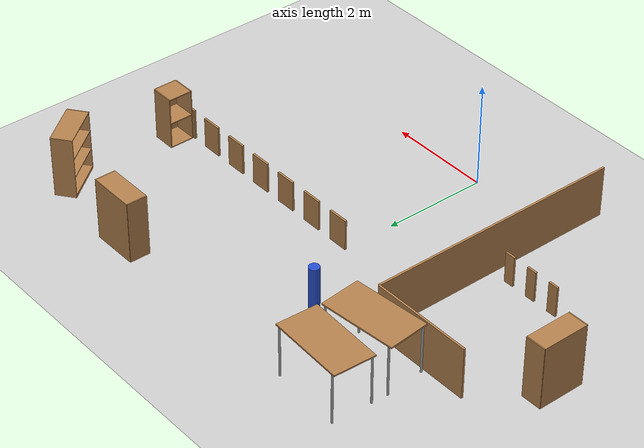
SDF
<sdf version="1.4">
 <world name="default">
  <model name="ground_plane">
   <static>1</static>
   <link name="link">
    <collision name="collision">
     <geometry><plane><normal>0 0 1</normal><size>50 50</size></plane></geometry>
     <surface><friction><ode><mu>100</mu><mu2>50</mu2></ode></friction></surface>
    </collision>
    <visual name="visual">
     <cast_shadows>0</cast_shadows>
     <geometry><plane><normal>0 0 1</normal><size>100 100</size></plane></geometry>
     <material>
      <script><uri>file://media/materials/scripts/gazebo.material</uri><name>Gazebo/Grey</name></script>
     </material>
    </visual>
    <velocity_decay><linear>0</linear><angular>0</angular></velocity_decay>
   </link>
  </model>
  <model name="target_cylinder_C">
   <pose>-1 4.5 0.5 0 -0 0</pose>
   <link name="link">
    <inertial>
     <mass>1</mass>
     <inertia><ixx>1</ixx><ixy>0</ixy><ixz>0</ixz><iyy>1</iyy><iyz>0</iyz><izz>1</izz></inertia>
    </inertial>
    <collision name="collision">
     <geometry><cylinder><radius>0.1</radius><length>1</length></cylinder></geometry>
    </collision>
    <visual name="visual">
     <geometry><cylinder><radius>0.1</radius><length>1</length></cylinder></geometry>
     <material>
      <script><uri>file://media/materials/scripts/gazebo.material</uri><name>Gazebo/Blue</name></script>
     </material>
    </visual>
    <velocity_decay><linear>0</linear><angular>0</angular></velocity_decay>
   </link>
   <static>1</static>
  </model>
  <model name="high_wall_3">
   <pose>-2 1.5 0.5 0 -0 1.571</pose>
   <link name="link">
    <inertial>
     <mass>1</mass>
     <inertia><ixx>1</ixx><ixy>0</ixy><ixz>0</ixz><iyy>1</iyy><iyz>0</iyz><izz>1</izz></inertia>
    </inertial>
    <collision name="collision"><geometry><box><size>5 0.04 1</size></box></geometry></collision>
    <visual name="visual">
     <geometry><box><size>5 0.04 1</size></box></geometry>
     <material>
      <script><uri>file://media/materials/scripts/gazebo.material</uri><name>Gazebo/Wood</name></script>
     </material>
    </visual>
    <velocity_decay><linear>0</linear><angular>0</angular></velocity_decay>
   </link>
   <static>1</static>
  </model>
  <model name="high_wall_4">
   <pose>-3 4 0.5 0 -0 0</pose>
   <link name="link">
    <inertial>
     <mass>1</mass>
     <inertia><ixx>1</ixx><ixy>0</ixy><ixz>0</ixz><iyy>1</iyy><iyz>0</iyz><izz>1</izz></inertia>
    </inertial>
    <collision name="collision"><geometry><box><size>2 0.04 1</size></box></geometry></collision>
    <visual name="visual">
     <geometry><box><size>2 0.04 1</size></box></geometry>
     <material>
      <script><uri>file://media/materials/scripts/gazebo.material</uri><name>Gazebo/Wood</name></script>
     </material>
    </visual>
    <velocity_decay><linear>0</linear><angular>0</angular></velocity_decay>
   </link>
   <static>1</static>
  </model>
  <model name="pillar_wall_1">
   <pose>0.2 3 0.3 0 -0 0</pose>
   <link name="link">
    <inertial>
     <mass>1</mass>
     <inertia><ixx>1</ixx><ixy>0</ixy><ixz>0</ixz><iyy>1</iyy><iyz>0</iyz><izz>1</izz></inertia>
    </inertial>
    <collision name="collision"><geometry><box><size>0.4 0.04 0.6</size></box></geometry></collision>
    <visual name="visual">
     <geometry><box><size>0.4 0.04 0.6</size></box></geometry>
     <material>
      <script><uri>file://media/materials/scripts/gazebo.material</uri><name>Gazebo/Wood</name></script>
     </material>
    </visual>
    <velocity_decay><linear>0</linear><angular>0</angular></velocity_decay>
   </link>
   <static>1</static>
  </model>
  <model name="pillar_wall_2">
   <pose>0.9 3 0.3 0 -0 0</pose>
   <link name="link">
    <inertial>
     <mass>1</mass>
     <inertia><ixx>1</ixx><ixy>0</ixy><ixz>0</ixz><iyy>1</iyy><iyz>0</iyz><izz>1</izz></inertia>
    </inertial>
    <collision name="collision"><geometry><box><size>0.4 0.04 0.6</size></box></geometry></collision>
    <visual name="visual">
     <geometry><box><size>0.4 0.04 0.6</size></box></geometry>
     <material>
      <script><uri>file://media/materials/scripts/gazebo.material</uri><name>Gazebo/Wood</name></script>
     </material>
    </visual>
    <velocity_decay><linear>0</linear><angular>0</angular></velocity_decay>
   </link>
   <static>1</static>
  </model>
  <model name="pillar_wall_3">
   <pose>1.6 3 0.3 0 -0 0</pose>
   <link name="link">
    <inertial>
     <mass>1</mass>
     <inertia><ixx>1</ixx><ixy>0</ixy><ixz>0</ixz><iyy>1</iyy><iyz>0</iyz><izz>1</izz></inertia>
    </inertial>
    <collision name="collision"><geometry><box><size>0.4 0.04 0.6</size></box></geometry></collision>
    <visual name="visual">
     <geometry><box><size>0.4 0.04 0.6</size></box></geometry>
     <material>
      <script><uri>file://media/materials/scripts/gazebo.material</uri><name>Gazebo/Wood</name></script>
     </material>
    </visual>
    <velocity_decay><linear>0</linear><angular>0</angular></velocity_decay>
   </link>
   <static>1</static>
  </model>
  <model name="pillar_wall_4">
   <pose>2.3 3 0.3 0 -0 0</pose>
   <link name="link">
    <inertial>
     <mass>1</mass>
     <inertia><ixx>1</ixx><ixy>0</ixy><ixz>0</ixz><iyy>1</iyy><iyz>0</iyz><izz>1</izz></inertia>
    </inertial>
    <collision name="collision"><geometry><box><size>0.4 0.04 0.6</size></box></geometry></collision>
    <visual name="visual">
     <geometry><box><size>0.4 0.04 0.6</size></box></geometry>
     <material>
      <script><uri>file://media/materials/scripts/gazebo.material</uri><name>Gazebo/Wood</name></script>
     </material>
    </visual>
    <velocity_decay><linear>0</linear><angular>0</angular></velocity_decay>
   </link>
   <static>1</static>
  </model>
  <model name="pillar_wall_5">
   <pose>3 3 0.3 0 -0 0</pose>
   <link name="link">
    <inertial>
     <mass>1</mass>
     <inertia><ixx>1</ixx><ixy>0</ixy><ixz>0</ixz><iyy>1</iyy><iyz>0</iyz><izz>1</izz></inertia>
    </inertial>
    <collision name="collision"><geometry><box><size>0.4 0.04 0.6</size></box></geometry></collision>
    <visual name="visual">
     <geometry><box><size>0.4 0.04 0.6</size></box></geometry>
     <material>
      <script><uri>file://media/materials/scripts/gazebo.material</uri><name>Gazebo/Wood</name></script>
     </material>
    </visual>
    <velocity_decay><linear>0</linear><angular>0</angular></velocity_decay>
   </link>
   <static>1</static>
  </model>
  <model name="pillar_wall_6">
   <pose>3.7 3 0.3 0 -0 0</pose>
   <link name="link">
    <inertial>
     <mass>1</mass>
     <inertia><ixx>1</ixx><ixy>0</ixy><ixz>0</ixz><iyy>1</iyy><iyz>0</iyz><izz>1</izz></inertia>
    </inertial>
    <collision name="collision"><geometry><box><size>0.4 0.04 0.6</size></box></geometry></collision>
    <visual name="visual">
     <geometry><box><size>0.4 0.04 0.6</size></box></geometry>
     <material>
      <script><uri>file://media/materials/scripts/gazebo.material</uri><name>Gazebo/Wood</name></script>
     </material>
    </visual>
    <velocity_decay><linear>0</linear><angular>0</angular></velocity_decay>
   </link>
   <static>1</static>
  </model>
  <model name="pillar_wall_7">
   <pose>4.5 3 0.3 0 -0 0</pose>
   <link name="link">
    <inertial>
     <mass>1</mass>
     <inertia><ixx>1</ixx><ixy>0</ixy><ixz>0</ixz><iyy>1</iyy><iyz>0</iyz><izz>1</izz></inertia>
    </inertial>
    <collision name="collision"><geometry><box><size>0.6 0.04 0.6</size></box></geometry></collision>
    <visual name="visual">
     <geometry><box><size>0.6 0.04 0.6</size></box></geometry>
     <material>
      <script><uri>file://media/materials/scripts/gazebo.material</uri><name>Gazebo/Wood</name></script>
     </material>
    </visual>
    <velocity_decay><linear>0</linear><angular>0</angular></velocity_decay>
   </link>
   <static>1</static>
  </model>
  <model name="pillar_wall_8">
   <pose>-3.4 1.5 0.3 0 -0 0</pose>
   <link name="link">
    <inertial>
     <mass>1</mass>
     <inertia><ixx>1</ixx><ixy>0</ixy><ixz>0</ixz><iyy>1</iyy><iyz>0</iyz><izz>1</izz></inertia>
    </inertial>
    <collision name="collision"><geometry><box><size>0.2 0.04 0.6</size></box></geometry></collision>
    <visual name="visual">
     <geometry><box><size>0.2 0.04 0.6</size></box></geometry>
     <material>
      <script><uri>file://media/materials/scripts/gazebo.material</uri><name>Gazebo/Wood</name></script>
     </material>
    </visual>
    <velocity_decay><linear>0</linear><angular>0</angular></velocity_decay>
   </link>
   <static>1</static>
  </model>
  <model name="pillar_wall_9">
   <pose>-2.9 1.5 0.3 0 -0 0</pose>
   <link name="link">
    <inertial>
     <mass>1</mass>
     <inertia><ixx>1</ixx><ixy>0</ixy><ixz>0</ixz><iyy>1</iyy><iyz>0</iyz><izz>1</izz></inertia>
    </inertial>
    <collision name="collision"><geometry><box><size>0.2 0.04 0.6</size></box></geometry></collision>
    <visual name="visual">
     <geometry><box><size>0.2 0.04 0.6</size></box></geometry>
     <material>
      <script><uri>file://media/materials/scripts/gazebo.material</uri><name>Gazebo/Wood</name></script>
     </material>
    </visual>
    <velocity_decay><linear>0</linear><angular>0</angular></velocity_decay>
   </link>
   <static>1</static>
  </model>
  <model name="pillar_wall_10">
   <pose>-2.4 1.5 0.3 0 -0 0</pose>
   <link name="link">
    <inertial>
     <mass>1</mass>
     <inertia><ixx>1</ixx><ixy>0</ixy><ixz>0</ixz><iyy>1</iyy><iyz>0</iyz><izz>1</izz></inertia>
    </inertial>
    <collision name="collision"><geometry><box><size>0.2 0.04 0.6</size></box></geometry></collision>
    <visual name="visual">
     <geometry><box><size>0.2 0.04 0.6</size></box></geometry>
     <material>
      <script><uri>file://media/materials/scripts/gazebo.material</uri><name>Gazebo/Wood</name></script>
     </material>
    </visual>
    <velocity_decay><linear>0</linear><angular>0</angular></velocity_decay>
   </link>
   <static>1</static>
  </model>
  <model name="table_1">
   <pose>-2.5 5.5 0 0 0 -0.05</pose>
   <static>1</static>
   <link name="link">
    <collision name="surface">
     <pose>0 0 1 0 -0 0</pose>
     <geometry><box><size>1.5 0.8 0.03</size></box></geometry>
     <surface><friction><ode><mu>0.6</mu><mu2>0.6</mu2></ode></friction></surface>
    </collision>
    <visual name="visual1">
     <pose>0 0 1 0 -0 0</pose>
     <geometry><box><size>1.5 0.8 0.03</size></box></geometry>
     <material>
      <script><uri>file://media/materials/scripts/gazebo.material</uri><name>Gazebo/Wood</name></script>
     </material>
    </visual>
    <collision name="front_left_leg">
     <pose>0.68 0.38 0.5 0 -0 0</pose>
     <geometry><cylinder><radius>0.02</radius><length>1</length></cylinder></geometry>
    </collision>
    <visual name="front_left_leg">
     <pose>0.68 0.38 0.5 0 -0 0</pose>
     <geometry><cylinder><radius>0.02</radius><length>1</length></cylinder></geometry>
     <material>
      <script><uri>file://media/materials/scripts/gazebo.material</uri><name>Gazebo/Grey</name></script>
     </material>
    </visual>
    <collision name="front_right_leg">
     <pose>0.68 -0.38 0.5 0 -0 0</pose>
     <geometry><cylinder><radius>0.02</radius><length>1</length></cylinder></geometry>
    </collision>
    <visual name="front_right_leg">
     <pose>0.68 -0.38 0.5 0 -0 0</pose>
     <geometry><cylinder><radius>0.02</radius><length>1</length></cylinder></geometry>
     <material>
      <script><uri>file://media/materials/scripts/gazebo.material</uri><name>Gazebo/Grey</name></script>
     </material>
    </visual>
    <collision name="back_right_leg">
     <pose>-0.68 -0.38 0.5 0 -0 0</pose>
     <geometry><cylinder><radius>0.02</radius><length>1</length></cylinder></geometry>
    </collision>
    <visual name="back_right_leg">
     <pose>-0.68 -0.38 0.5 0 -0 0</pose>
     <geometry><cylinder><radius>0.02</radius><length>1</length></cylinder></geometry>
     <material>
      <script><uri>file://media/materials/scripts/gazebo.material</uri><name>Gazebo/Grey</name></script>
     </material>
    </visual>
    <collision name="back_left_leg">
     <pose>-0.68 0.38 0.5 0 -0 0</pose>
     <geometry><cylinder><radius>0.02</radius><length>1</length></cylinder></geometry>
    </collision>
    <visual name="back_left_leg">
     <pose>-0.68 0.38 0.5 0 -0 0</pose>
     <geometry><cylinder><radius>0.02</radius><length>1</length></cylinder></geometry>
     <material>
      <script><uri>file://media/materials/scripts/gazebo.material</uri><name>Gazebo/Grey</name></script>
     </material>
    </visual>
    <velocity_decay><linear>0</linear><angular>0</angular></velocity_decay>
   </link>
  </model>
  <model name="table_2">
   <pose>-2.5 4.53 0 0 -0 0.1</pose>
   <static>1</static>
   <link name="link">
    <collision name="surface">
     <pose>0 0 1 0 -0 0</pose>
     <geometry><box><size>1.5 0.8 0.03</size></box></geometry>
     <surface><friction><ode><mu>0.6</mu><mu2>0.6</mu2></ode></friction></surface>
    </collision>
    <visual name="visual1">
     <pose>0 0 1 0 -0 0</pose>
     <geometry><box><size>1.5 0.8 0.03</size></box></geometry>
     <material>
      <script><uri>file://media/materials/scripts/gazebo.material</uri><name>Gazebo/Wood</name></script>
     </material>
    </visual>
    <collision name="front_left_leg">
     <pose>0.68 0.38 0.5 0 -0 0</pose>
     <geometry><cylinder><radius>0.02</radius><length>1</length></cylinder></geometry>
    </collision>
    <visual name="front_left_leg">
     <pose>0.68 0.38 0.5 0 -0 0</pose>
     <geometry><cylinder><radius>0.02</radius><length>1</length></cylinder></geometry>
     <material>
      <script><uri>file://media/materials/scripts/gazebo.material</uri><name>Gazebo/Grey</name></script>
     </material>
    </visual>
    <collision name="front_right_leg">
     <pose>0.68 -0.38 0.5 0 -0 0</pose>
     <geometry><cylinder><radius>0.02</radius><length>1</length></cylinder></geometry>
    </collision>
    <visual name="front_right_leg">
     <pose>0.68 -0.38 0.5 0 -0 0</pose>
     <geometry><cylinder><radius>0.02</radius><length>1</length></cylinder></geometry>
     <material>
      <script><uri>file://media/materials/scripts/gazebo.material</uri><name>Gazebo/Grey</name></script>
     </material>
    </visual>
    <collision name="back_right_leg">
     <pose>-0.68 -0.38 0.5 0 -0 0</pose>
     <geometry><cylinder><radius>0.02</radius><length>1</length></cylinder></geometry>
    </collision>
    <visual name="back_right_leg">
     <pose>-0.68 -0.38 0.5 0 -0 0</pose>
     <geometry><cylinder><radius>0.02</radius><length>1</length></cylinder></geometry>
     <material>
      <script><uri>file://media/materials/scripts/gazebo.material</uri><name>Gazebo/Grey</name></script>
     </material>
    </visual>
    <collision name="back_left_leg">
     <pose>-0.68 0.38 0.5 0 -0 0</pose>
     <geometry><cylinder><radius>0.02</radius><length>1</length></cylinder></geometry>
    </collision>
    <visual name="back_left_leg">
     <pose>-0.68 0.38 0.5 0 -0 0</pose>
     <geometry><cylinder><radius>0.02</radius><length>1</length></cylinder></geometry>
     <material>
      <script><uri>file://media/materials/scripts/gazebo.material</uri><name>Gazebo/Grey</name></script>
     </material>
    </visual>
    <velocity_decay><linear>0</linear><angular>0</angular></velocity_decay>
   </link>
  </model>
  <model name="bookshelf_1">
   <static>1</static>
   <link name="link">
    <inertial><mass>1</mass></inertial>
    <collision name="back">
     <pose>0 0.005 0.6 0 -0 0</pose>
     <geometry><box><size>0.9 0.01 1.2</size></box></geometry>
    </collision>
    <visual name="visual1">
     <pose>0 0.005 0.6 0 -0 0</pose>
     <geometry><box><size>0.9 0.01 1.2</size></box></geometry>
     <material>
      <script><uri>file://media/materials/scripts/gazebo.material</uri><name>Gazebo/Wood</name></script>
     </material>
    </visual>
    <collision name="left_side">
     <pose>0.45 -0.195 0.6 0 -0 0</pose>
     <geometry><box><size>0.02 0.4 1.2</size></box></geometry>
    </collision>
    <visual name="visual2">
     <pose>0.45 -0.195 0.6 0 -0 0</pose>
     <geometry><box><size>0.02 0.4 1.2</size></box></geometry>
     <material>
      <script><uri>file://media/materials/scripts/gazebo.material</uri><name>Gazebo/Wood</name></script>
     </material>
    </visual>
    <collision name="right_side">
     <pose>-0.45 -0.195 0.6 0 -0 0</pose>
     <geometry><box><size>0.02 0.4 1.2</size></box></geometry>
    </collision>
    <visual name="visual3">
     <pose>-0.45 -0.195 0.6 0 -0 0</pose>
     <geometry><box><size>0.02 0.4 1.2</size></box></geometry>
     <material>
      <script><uri>file://media/materials/scripts/gazebo.material</uri><name>Gazebo/Wood</name></script>
     </material>
    </visual>
    <collision name="bottom">
     <pose>0 -0.195 0.03 0 -0 0</pose>
     <geometry><box><size>0.88 0.4 0.06</size></box></geometry>
    </collision>
    <visual name="visual4">
     <pose>0 -0.195 0.03 0 -0 0</pose>
     <geometry><box><size>0.88 0.4 0.06</size></box></geometry>
     <material>
      <script><uri>file://media/materials/scripts/gazebo.material</uri><name>Gazebo/Wood</name></script>
     </material>
    </visual>
    <collision name="top">
     <pose>0 -0.195 1.19 0 -0 0</pose>
     <geometry><box><size>0.88 0.4 0.02</size></box></geometry>
    </collision>
    <visual name="visual5">
     <pose>0 -0.195 1.19 0 -0 0</pose>
     <geometry><box><size>0.88 0.4 0.02</size></box></geometry>
     <material>
      <script><uri>file://media/materials/scripts/gazebo.material</uri><name>Gazebo/Wood</name></script>
     </material>
    </visual>
    <collision name="low_shelf">
     <pose>0 -0.195 0.43 0 -0 0</pose>
     <geometry><box><size>0.88 0.4 0.02</size></box></geometry>
    </collision>
    <visual name="visual6">
     <pose>0 -0.195 0.43 0 -0 0</pose>
     <geometry><box><size>0.88 0.4 0.02</size></box></geometry>
     <material>
      <script><uri>file://media/materials/scripts/gazebo.material</uri><name>Gazebo/Wood</name></script>
     </material>
    </visual>
    <collision name="high_shelf">
     <pose>0 -0.195 0.8 0 -0 0</pose>
     <geometry><box><size>0.88 0.4 0.02</size></box></geometry>
    </collision>
    <visual name="visual7">
     <pose>0 -0.195 0.8 0 -0 0</pose>
     <geometry><box><size>0.88 0.4 0.02</size></box></geometry>
     <material>
      <script><uri>file://media/materials/scripts/gazebo.material</uri><name>Gazebo/Wood</name></script>
     </material>
    </visual>
    <velocity_decay><linear>0</linear><angular>0</angular></velocity_decay>
   </link>
   <pose>2.45547 6 0 0 -0 0</pose>
  </model>
  <model name="bookshelf_2">
   <static>1</static>
   <link name="link">
    <inertial><mass>1</mass></inertial>
    <collision name="back">
     <pose>0 0.005 0.6 0 -0 0</pose>
     <geometry><box><size>0.9 0.01 1.2</size></box></geometry>
    </collision>
    <visual name="visual1">
     <pose>0 0.005 0.6 0 -0 0</pose>
     <geometry><box><size>0.9 0.01 1.2</size></box></geometry>
     <material>
      <script><uri>file://media/materials/scripts/gazebo.material</uri><name>Gazebo/Wood</name></script>
     </material>
    </visual>
    <collision name="left_side">
     <pose>0.45 -0.195 0.6 0 -0 0</pose>
     <geometry><box><size>0.02 0.4 1.2</size></box></geometry>
    </collision>
    <visual name="visual2">
     <pose>0.45 -0.195 0.6 0 -0 0</pose>
     <geometry><box><size>0.02 0.4 1.2</size></box></geometry>
     <material>
      <script><uri>file://media/materials/scripts/gazebo.material</uri><name>Gazebo/Wood</name></script>
     </material>
    </visual>
    <collision name="right_side">
     <pose>-0.45 -0.195 0.6 0 -0 0</pose>
     <geometry><box><size>0.02 0.4 1.2</size></box></geometry>
    </collision>
    <visual name="visual3">
     <pose>-0.45 -0.195 0.6 0 -0 0</pose>
     <geometry><box><size>0.02 0.4 1.2</size></box></geometry>
     <material>
      <script><uri>file://media/materials/scripts/gazebo.material</uri><name>Gazebo/Wood</name></script>
     </material>
    </visual>
    <collision name="bottom">
     <pose>0 -0.195 0.03 0 -0 0</pose>
     <geometry><box><size>0.88 0.4 0.06</size></box></geometry>
    </collision>
    <visual name="visual4">
     <pose>0 -0.195 0.03 0 -0 0</pose>
     <geometry><box><size>0.88 0.4 0.06</size></box></geometry>
     <material>
      <script><uri>file://media/materials/scripts/gazebo.material</uri><name>Gazebo/Wood</name></script>
     </material>
    </visual>
    <collision name="top">
     <pose>0 -0.195 1.19 0 -0 0</pose>
     <geometry><box><size>0.88 0.4 0.02</size></box></geometry>
    </collision>
    <visual name="visual5">
     <pose>0 -0.195 1.19 0 -0 0</pose>
     <geometry><box><size>0.88 0.4 0.02</size></box></geometry>
     <material>
      <script><uri>file://media/materials/scripts/gazebo.material</uri><name>Gazebo/Wood</name></script>
     </material>
    </visual>
    <collision name="low_shelf">
     <pose>0 -0.195 0.43 0 -0 0</pose>
     <geometry><box><size>0.88 0.4 0.02</size></box></geometry>
    </collision>
    <visual name="visual6">
     <pose>0 -0.195 0.43 0 -0 0</pose>
     <geometry><box><size>0.88 0.4 0.02</size></box></geometry>
     <material>
      <script><uri>file://media/materials/scripts/gazebo.material</uri><name>Gazebo/Wood</name></script>
     </material>
    </visual>
    <collision name="high_shelf">
     <pose>0 -0.195 0.8 0 -0 0</pose>
     <geometry><box><size>0.88 0.4 0.02</size></box></geometry>
    </collision>
    <visual name="visual7">
     <pose>0 -0.195 0.8 0 -0 0</pose>
     <geometry><box><size>0.88 0.4 0.02</size></box></geometry>
     <material>
      <script><uri>file://media/materials/scripts/gazebo.material</uri><name>Gazebo/Wood</name></script>
     </material>
    </visual>
    <velocity_decay><linear>0</linear><angular>0</angular></velocity_decay>
   </link>
   <pose>4.65383 5.55808 0 0 0 -0.917052</pose>
  </model>
  <model name="cabinet_1">
   <static>1</static>
   <link name="cabinet_bottom_plate">
    <inertial>
     <pose>0 0 -1 0 -0 0</pose>
     <inertia><ixx>2.05</ixx><ixy>0</ixy><ixz>0</ixz><iyy>2.05</iyy><iyz>0</iyz><izz>2.05</izz></inertia>
     <mass>25</mass>
    </inertial>
    <collision name="cabinet_bottom_plate_geom">
     <pose>0 0 0.01 0 -0 0</pose>
     <geometry><box><size>0.45 0.45 0.02</size></box></geometry>
    </collision>
    <visual name="cabinet_bottom_plate_geom_visual">
     <pose>0 0 0.01 0 -0 0</pose>
     <geometry><box><size>0.45 0.45 0.02</size></box></geometry>
     <material>
      <script><uri>file://media/materials/scripts/gazebo.material</uri><name>Gazebo/Wood</name></script>
     </material>
    </visual>
    <collision name="cabinet_bottom_plate_geom_cabinet_back_plate">
     <pose>0.235 0 0.51 0 -0 0</pose>
     <geometry><box><size>0.02 0.45 1.02</size></box></geometry>
    </collision>
    <visual name="cabinet_bottom_plate_geom_cabinet_back_plate_visual">
     <pose>0.235 0 0.51 0 -0 0</pose>
     <geometry><box><size>0.02 0.45 1.02</size></box></geometry>
     <material>
      <script><uri>file://media/materials/scripts/gazebo.material</uri><name>Gazebo/Wood</name></script>
     </material>
    </visual>
    <collision name="cabinet_bottom_plate_geom_cabinet_left_plate">
     <pose>0 0.235 0.51 0 -0 0</pose>
     <geometry><box><size>0.45 0.02 1.02</size></box></geometry>
    </collision>
    <visual name="cabinet_bottom_plate_geom_cabinet_left_plate_visual">
     <pose>0 0.235 0.51 0 -0 0</pose>
     <geometry><box><size>0.45 0.02 1.02</size></box></geometry>
     <material>
      <script><uri>file://media/materials/scripts/gazebo.material</uri><name>Gazebo/Wood</name></script>
     </material>
    </visual>
    <collision name="cabinet_bottom_plate_geom_cabinet_middle_plate">
     <pose>0 0 0.51 0 -0 0</pose>
     <geometry><box><size>0.45 0.45 0.02</size></box></geometry>
    </collision>
    <visual name="cabinet_bottom_plate_geom_cabinet_middle_plate_visual">
     <pose>0 0 0.51 0 -0 0</pose>
     <geometry><box><size>0.45 0.45 0.02</size></box></geometry>
     <material>
      <script><uri>file://media/materials/scripts/gazebo.material</uri><name>Gazebo/Wood</name></script>
     </material>
    </visual>
    <collision name="cabinet_bottom_plate_geom_cabinet_right_plate">
     <pose>0 -0.235 0.51 0 -0 0</pose>
     <geometry><box><size>0.45 0.02 1.02</size></box></geometry>
    </collision>
    <visual name="cabinet_bottom_plate_geom_cabinet_right_plate_visual">
     <pose>0 -0.235 0.51 0 -0 0</pose>
     <geometry><box><size>0.45 0.02 1.02</size></box></geometry>
     <material>
      <script><uri>file://media/materials/scripts/gazebo.material</uri><name>Gazebo/Wood</name></script>
     </material>
    </visual>
    <collision name="cabinet_bottom_plate_geom_cabinet_top_plate">
     <pose>0 0 1.01 0 -0 0</pose>
     <geometry><box><size>0.45 0.45 0.02</size></box></geometry>
    </collision>
    <visual name="cabinet_bottom_plate_geom_cabinet_top_plate_visual">
     <pose>0 0 1.01 0 -0 0</pose>
     <geometry><box><size>0.45 0.45 0.02</size></box></geometry>
     <material>
      <script><uri>file://media/materials/scripts/gazebo.material</uri><name>Gazebo/Wood</name></script>
     </material>
    </visual>
    <velocity_decay><linear>0</linear><angular>0</angular></velocity_decay>
   </link>
   <pose>4.46055 3.27831 0 0 -0 0</pose>
  </model>
  <model name="bookshelf_3">
   <static>1</static>
   <link name="link">
    <inertial><mass>1</mass></inertial>
    <collision name="back">
     <pose>0 0.005 0.6 0 -0 0</pose>
     <geometry><box><size>0.9 0.01 1.2</size></box></geometry>
    </collision>
    <visual name="visual1">
     <pose>0 0.005 0.6 0 -0 0</pose>
     <geometry><box><size>0.9 0.01 1.2</size></box></geometry>
     <material>
      <script><uri>file://media/materials/scripts/gazebo.material</uri><name>Gazebo/Wood</name></script>
     </material>
    </visual>
    <collision name="left_side">
     <pose>0.45 -0.195 0.6 0 -0 0</pose>
     <geometry><box><size>0.02 0.4 1.2</size></box></geometry>
    </collision>
    <visual name="visual2">
     <pose>0.45 -0.195 0.6 0 -0 0</pose>
     <geometry><box><size>0.02 0.4 1.2</size></box></geometry>
     <material>
      <script><uri>file://media/materials/scripts/gazebo.material</uri><name>Gazebo/Wood</name></script>
     </material>
    </visual>
    <collision name="right_side">
     <pose>-0.45 -0.195 0.6 0 -0 0</pose>
     <geometry><box><size>0.02 0.4 1.2</size></box></geometry>
    </collision>
    <visual name="visual3">
     <pose>-0.45 -0.195 0.6 0 -0 0</pose>
     <geometry><box><size>0.02 0.4 1.2</size></box></geometry>
     <material>
      <script><uri>file://media/materials/scripts/gazebo.material</uri><name>Gazebo/Wood</name></script>
     </material>
    </visual>
    <collision name="bottom">
     <pose>0 -0.195 0.03 0 -0 0</pose>
     <geometry><box><size>0.88 0.4 0.06</size></box></geometry>
    </collision>
    <visual name="visual4">
     <pose>0 -0.195 0.03 0 -0 0</pose>
     <geometry><box><size>0.88 0.4 0.06</size></box></geometry>
     <material>
      <script><uri>file://media/materials/scripts/gazebo.material</uri><name>Gazebo/Wood</name></script>
     </material>
    </visual>
    <collision name="top">
     <pose>0 -0.195 1.19 0 -0 0</pose>
     <geometry><box><size>0.88 0.4 0.02</size></box></geometry>
    </collision>
    <visual name="visual5">
     <pose>0 -0.195 1.19 0 -0 0</pose>
     <geometry><box><size>0.88 0.4 0.02</size></box></geometry>
     <material>
      <script><uri>file://media/materials/scripts/gazebo.material</uri><name>Gazebo/Wood</name></script>
     </material>
    </visual>
    <collision name="low_shelf">
     <pose>0 -0.195 0.43 0 -0 0</pose>
     <geometry><box><size>0.88 0.4 0.02</size></box></geometry>
    </collision>
    <visual name="visual6">
     <pose>0 -0.195 0.43 0 -0 0</pose>
     <geometry><box><size>0.88 0.4 0.02</size></box></geometry>
     <material>
      <script><uri>file://media/materials/scripts/gazebo.material</uri><name>Gazebo/Wood</name></script>
     </material>
    </visual>
    <collision name="high_shelf">
     <pose>0 -0.195 0.8 0 -0 0</pose>
     <geometry><box><size>0.88 0.4 0.02</size></box></geometry>
    </collision>
    <visual name="visual7">
     <pose>0 -0.195 0.8 0 -0 0</pose>
     <geometry><box><size>0.88 0.4 0.02</size></box></geometry>
     <material>
      <script><uri>file://media/materials/scripts/gazebo.material</uri><name>Gazebo/Wood</name></script>
     </material>
    </visual>
    <velocity_decay><linear>0</linear><angular>0</angular></velocity_decay>
   </link>
   <pose>-4.93114 2.78794 0 0 -0 1.57869</pose>
  </model>
 </world>
</sdf>
